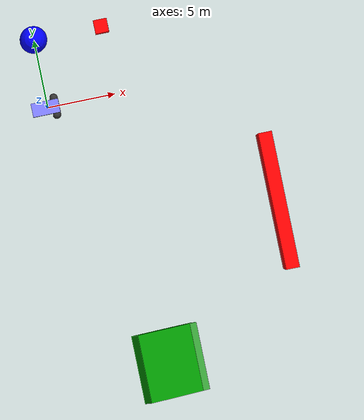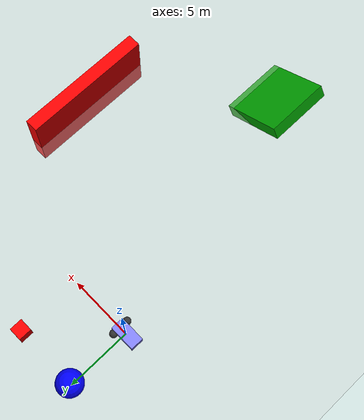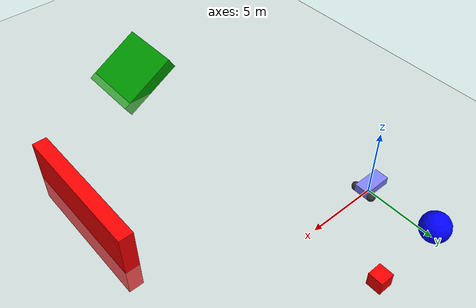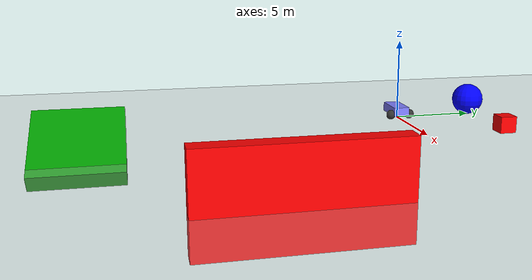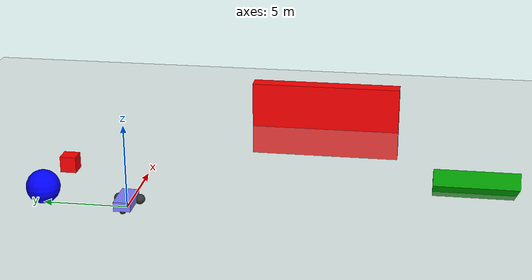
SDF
<?xml version="1.0" ?>
<sdf version="1.9" xmlns:gz="http://gazebosim.org/schema">
  <world name="entity_semantics">

    <plugin
      filename="gz-sim-user-commands-system"
      name="gz::sim::systems::UserCommands">
    </plugin>
    <plugin
      filename="gz-sim-physics-system"
      name="gz::sim::systems::Physics">
    </plugin>
    <plugin
      filename="gz-sim-scene-broadcaster-system"
      name="gz::sim::systems::SceneBroadcaster">
    </plugin>
    <plugin
      filename="gz-sim-entity-semantics-system"
      name="gz::sim::systems::EntitySemantics">
    </plugin>

    <light type="directional" name="sun">
      <cast_shadows>true</cast_shadows>
      <pose>0 0 10 0 0 0</pose>
      <diffuse>1 1 1 1</diffuse>
      <specular>0.5 0.5 0.5 1</specular>
      <attenuation>
        <range>1000</range>
        <constant>0.9</constant>
        <linear>0.01</linear>
        <quadratic>0.001</quadratic>
      </attenuation>
      <direction>-0.5 0.1 -0.9</direction>
    </light>

    <model name="ground_plane">
      <gz:semantics>
        <category>STATIC_OBJECT</category>
      </gz:semantics>
      <static>true</static>
      <link name="link">
        <collision name="collision">
          <geometry>
            <plane>
              <normal>0 0 1</normal>
              <size>100 100</size>
            </plane>
          </geometry>
        </collision>
        <visual name="visual">
          <geometry>
            <plane>
              <normal>0 0 1</normal>
              <size>100 100</size>
            </plane>
          </geometry>
          <material>
            <ambient>0.8 0.8 0.8 1</ambient>
            <diffuse>0.8 0.8 0.8 1</diffuse>
            <specular>0.8 0.8 0.8 1</specular>
          </material>
        </visual>
      </link>
    </model>

    <model name='vehicle'>
      <gz:semantics>
        <category>ROBOT</category>
        <description>Food delivery mobile robot</description>
        <tag>mobile</tag>
        <tag>diff_drive</tag>
      </gz:semantics>

      <pose>0 0 0.325 0 -0 0</pose>

      <link name='chassis'>
        <pose>-0.151427 -0 0.175 0 -0 0</pose>
        <inertial>
          <mass>1.14395</mass>
          <inertia>
            <ixx>0.126164</ixx>
            <ixy>0</ixy>
            <ixz>0</ixz>
            <iyy>0.416519</iyy>
            <iyz>0</iyz>
            <izz>0.481014</izz>
          </inertia>
        </inertial>
        <visual name='visual'>
          <geometry>
            <box>
              <size>2.01142 1 0.568726</size>
            </box>
          </geometry>
          <material>
            <ambient>0.5 0.5 1.0 1</ambient>
            <diffuse>0.5 0.5 1.0 1</diffuse>
            <specular>0.0 0.0 1.0 1</specular>
          </material>
        </visual>
        <collision name='collision'>
          <geometry>
            <box>
              <size>2.01142 1 0.568726</size>
            </box>
          </geometry>
        </collision>
      </link>

      <link name='left_wheel'>
        <pose>0.554283 0.625029 -0.025 -1.5707 0 0</pose>
        <inertial>
          <mass>2</mass>
          <inertia>
            <ixx>0.145833</ixx>
            <ixy>0</ixy>
            <ixz>0</ixz>
            <iyy>0.145833</iyy>
            <iyz>0</iyz>
            <izz>0.125</izz>
          </inertia>
        </inertial>
        <visual name='visual'>
          <geometry>
            <sphere>
              <radius>0.3</radius>
            </sphere>
          </geometry>
          <material>
            <ambient>0.2 0.2 0.2 1</ambient>
            <diffuse>0.2 0.2 0.2 1</diffuse>
            <specular>0.2 0.2 0.2 1</specular>
          </material>
        </visual>
        <collision name='collision'>
          <geometry>
            <sphere>
              <radius>0.3</radius>
            </sphere>
          </geometry>
        </collision>
      </link>

      <link name='right_wheel'>
        <pose>0.554282 -0.625029 -0.025 -1.5707 0 0</pose>
        <inertial>
          <mass>2</mass>
          <inertia>
            <ixx>0.145833</ixx>
            <ixy>0</ixy>
            <ixz>0</ixz>
            <iyy>0.145833</iyy>
            <iyz>0</iyz>
            <izz>0.125</izz>
          </inertia>
        </inertial>
        <visual name='visual'>
          <geometry>
            <sphere>
              <radius>0.3</radius>
            </sphere>
          </geometry>
          <material>
            <ambient>0.2 0.2 0.2 1</ambient>
            <diffuse>0.2 0.2 0.2 1</diffuse>
            <specular>0.2 0.2 0.2 1</specular>
          </material>
        </visual>
        <collision name='collision'>
          <geometry>
            <sphere>
              <radius>0.3</radius>
            </sphere>
          </geometry>
        </collision>
      </link>

      <link name='caster'>
        <pose>-0.957138 -0 -0.125 0 -0 0</pose>
        <inertial>
          <mass>1</mass>
          <inertia>
            <ixx>0.1</ixx>
            <ixy>0</ixy>
            <ixz>0</ixz>
            <iyy>0.1</iyy>
            <iyz>0</iyz>
            <izz>0.1</izz>
          </inertia>
        </inertial>
        <visual name='visual'>
          <geometry>
            <sphere>
              <radius>0.2</radius>
            </sphere>
          </geometry>
          <material>
            <ambient>0.2 0.2 0.2 1</ambient>
            <diffuse>0.2 0.2 0.2 1</diffuse>
            <specular>0.2 0.2 0.2 1</specular>
          </material>
        </visual>
        <collision name='collision'>
          <geometry>
            <sphere>
              <radius>0.2</radius>
            </sphere>
          </geometry>
        </collision>
      </link>

      <joint name='left_wheel_joint' type='revolute'>
        <parent>chassis</parent>
        <child>left_wheel</child>
        <axis>
          <xyz>0 0 1</xyz>
          <limit>
            <lower>-1.79769e+308</lower>
            <upper>1.79769e+308</upper>
          </limit>
        </axis>
      </joint>

      <joint name='right_wheel_joint' type='revolute'>
        <parent>chassis</parent>
        <child>right_wheel</child>
        <axis>
          <xyz>0 0 1</xyz>
          <limit>
            <lower>-1.79769e+308</lower>
            <upper>1.79769e+308</upper>
          </limit>
        </axis>
      </joint>

      <joint name='caster_wheel' type='ball'>
        <parent>chassis</parent>
        <child>caster</child>
      </joint>

      <plugin
        filename="gz-sim-diff-drive-system"
        name="gz::sim::systems::DiffDrive">
        <left_joint>left_wheel_joint</left_joint>
        <right_joint>right_wheel_joint</right_joint>
        <wheel_separation>1.25</wheel_separation>
        <wheel_radius>0.3</wheel_radius>
        <max_linear_acceleration>1</max_linear_acceleration>
        <min_linear_acceleration>-1</min_linear_acceleration>
        <max_angular_acceleration>2</max_angular_acceleration>
        <min_angular_acceleration>-2</min_angular_acceleration>
        <max_linear_velocity>0.5</max_linear_velocity>
        <min_linear_velocity>-0.5</min_linear_velocity>
        <max_angular_velocity>1</max_angular_velocity>
        <min_angular_velocity>-1</min_angular_velocity>
      </plugin>
    </model>

    <model name="box">
      <gz:semantics>
        <category>DYNAMIC_OBJECT</category>
      </gz:semantics>
      <pose>5 5 0.5 0 0 0</pose>
      <link name="box_link">
        <inertial>
          <inertia>
            <ixx>0.16666</ixx>
            <ixy>0</ixy>
            <ixz>0</ixz>
            <iyy>0.16666</iyy>
            <iyz>0</iyz>
            <izz>0.16666</izz>
          </inertia>
          <mass>1.0</mass>
        </inertial>
        <collision name="box_collision">
          <geometry>
            <box>
              <size>1 1 1</size>
            </box>
          </geometry>
        </collision>

        <visual name="box_visual">
          <geometry>
            <box>
              <size>1 1 1</size>
            </box>
          </geometry>
          <material>
            <ambient>1 0 0 1</ambient>
            <diffuse>1 0 0 1</diffuse>
            <specular>1 0 0 1</specular>
          </material>
        </visual>
      </link>
    </model>

    <model name="sphere">
      <pose>0 5 1 0 0 1</pose>
      <gz:semantics>
        <category>DYNAMIC_OBJECT</category>
      </gz:semantics>
      <link name="sphere_link">
        <inertial auto="true">
          <mass>1.0</mass>
        </inertial>
        <collision name="sphere_collision">
          <geometry>
            <sphere>
              <radius>1</radius>
            </sphere>
          </geometry>
        </collision>

        <visual name="sphere_visual">
          <geometry>
            <sphere>
              <radius>1</radius>
            </sphere>
          </geometry>
          <material>
            <ambient>0 0 1 1</ambient>
            <diffuse>0 0 1 1</diffuse>
            <specular>0 0 1 1</specular>
          </material>
        </visual>
      </link>
    </model>

    <model name="wall">
      <gz:semantics>
        <category>STATIC_OBJECT</category>
      </gz:semantics>
      <static>true</static>
      <pose>15 -10 0.5 0 0 0</pose>
      <link name="wall_link">
        <collision name="wall_collision">
          <geometry>
            <box>
              <size>1 10 5</size>
            </box>
          </geometry>
        </collision>

        <visual name="wall_visual">
          <geometry>
            <box>
              <size>1 10 5</size>
            </box>
          </geometry>
          <material>
            <ambient>1 0 0 1</ambient>
            <diffuse>1 0 0 1</diffuse>
            <specular>1 0 0 1</specular>
          </material>
        </visual>
      </link>
    </model>

    <model name="incline">
      <gz:semantics>
        <category>STATIC_OBJECT</category>
      </gz:semantics>
      <static>true</static>
      <pose degrees="true">5 -20 0.5   0 30 0</pose>
      <link name="wall_link">
        <collision name="wall_collision">
          <geometry>
            <box>
              <size>5 5 1</size>
            </box>
          </geometry>
        </collision>

        <visual name="wall_visual">
          <geometry>
            <box>
              <size>5 5 1</size>
            </box>
          </geometry>
          <material>
            <diffuse>0 0.6 0 1</diffuse>
          </material>
        </visual>
      </link>
    </model>
  </world>
</sdf>
